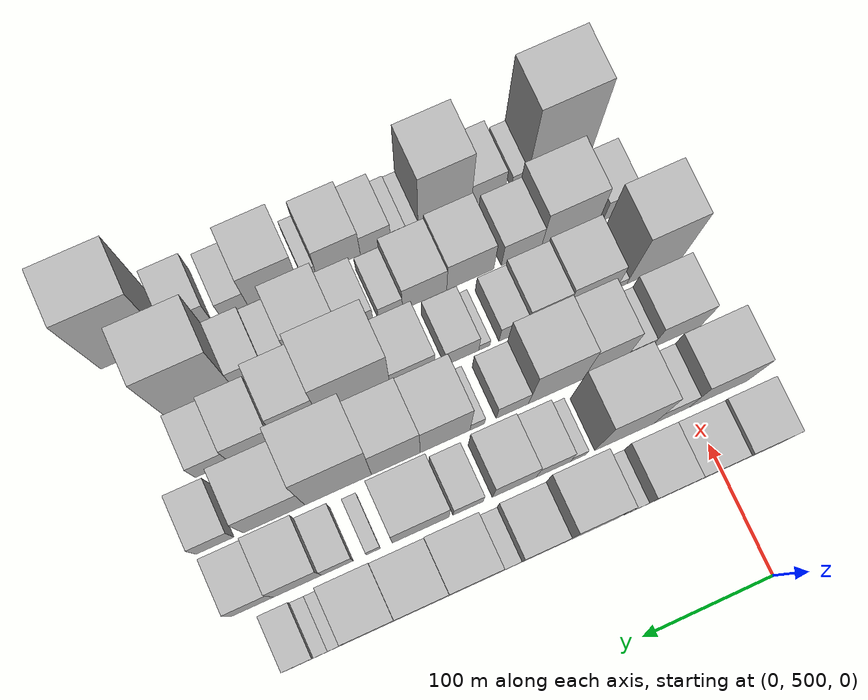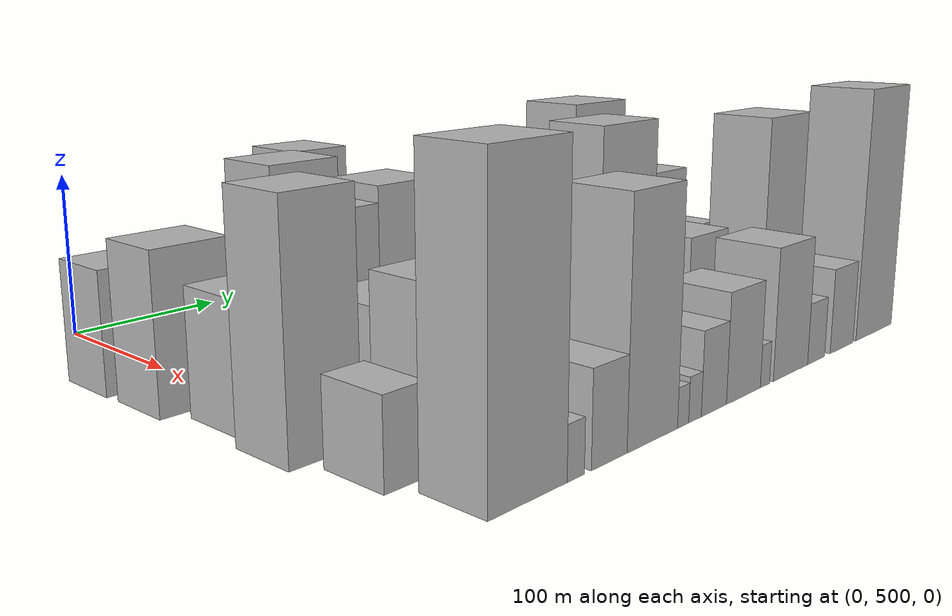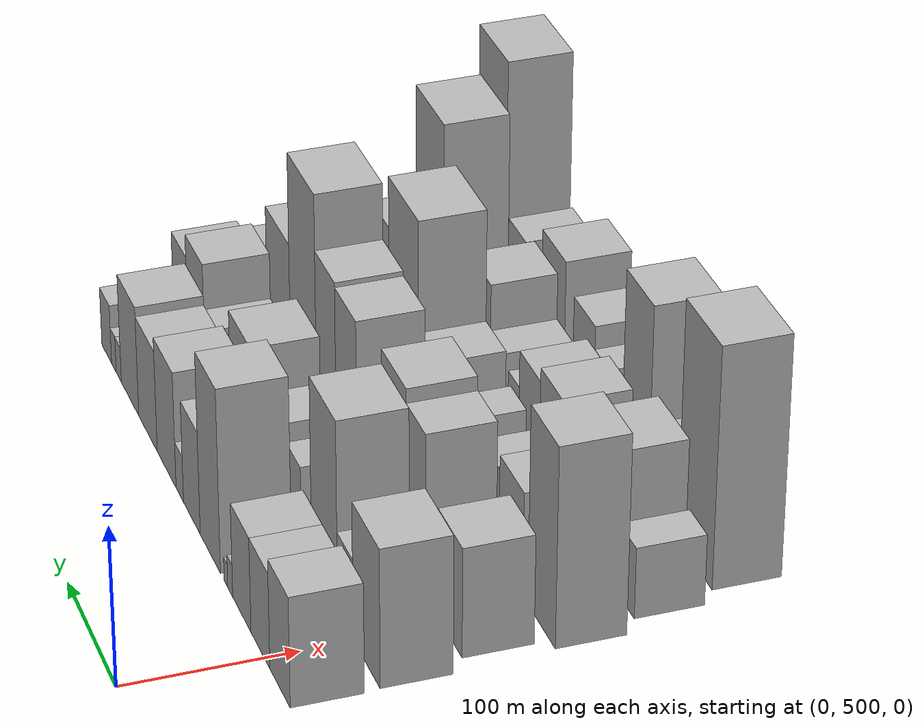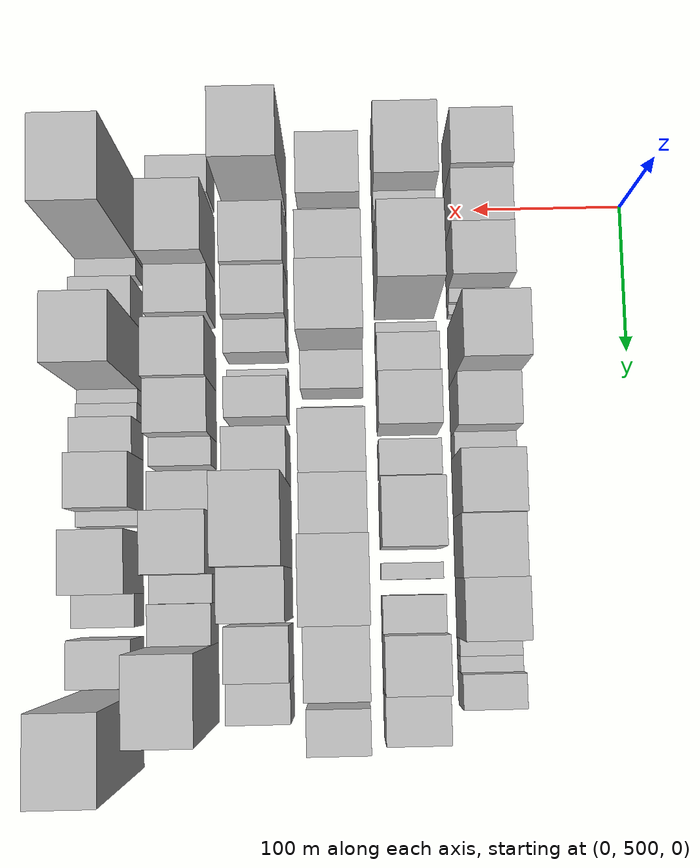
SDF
<sdf version="1.6">
 <world name="default">
  <model name="building_39">
   <static>1</static>
   <pose>100.0000 472.1289 0 0.000000 0.000000 0.000000</pose>
   <link name="link">
    <pose>0 0 34.50 0 0 0</pose>
    <collision name="collision"><geometry><box><size>40.0000 36.1542 69.0000</size></box></geometry></collision>
    <visual name="visual">
     <cast_shadows>0</cast_shadows>
     <geometry><box><size>40.0000 36.1542 69.0000</size></box></geometry>
     <material>
      <script>
       <uri>model://HANNAS_wall/materials/scripts</uri>
       <uri>model://HANNAS_wall/materials/textures</uri>
       <name>vrc/HANNAS_wall</name>
      </script>
     </material>
    </visual>
   </link>
  </model>
  <model name="building_40">
   <static>1</static>
   <pose>100.0000 507.4661 0 0.000000 0.000000 0.000000</pose>
   <link name="link">
    <pose>0 0 30.00 0 0 0</pose>
    <collision name="collision"><geometry><box><size>40.0000 34.5202 60.0000</size></box></geometry></collision>
    <visual name="visual">
     <cast_shadows>0</cast_shadows>
     <geometry><box><size>40.0000 34.5202 60.0000</size></box></geometry>
     <material>
      <script>
       <uri>model://HANNAS_wall/materials/scripts</uri>
       <uri>model://HANNAS_wall/materials/textures</uri>
       <name>vrc/HANNAS_wall</name>
      </script>
     </material>
    </visual>
   </link>
  </model>
  <model name="building_41">
   <static>1</static>
   <pose>100.0000 541.8242 0 0.000000 0.000000 0.000000</pose>
   <link name="link">
    <pose>0 0 30.00 0 0 0</pose>
    <collision name="collision"><geometry><box><size>40.0000 34.1960 60.0000</size></box></geometry></collision>
    <visual name="visual">
     <cast_shadows>0</cast_shadows>
     <geometry><box><size>40.0000 34.1960 60.0000</size></box></geometry>
     <material>
      <script>
       <uri>model://HANNAS_wall/materials/scripts</uri>
       <uri>model://HANNAS_wall/materials/textures</uri>
       <name>vrc/HANNAS_wall</name>
      </script>
     </material>
    </visual>
   </link>
  </model>
  <model name="building_42">
   <static>1</static>
   <pose>100.0000 563.6817 0 0.000000 0.000000 0.000000</pose>
   <link name="link">
    <pose>0 0 10.50 0 0 0</pose>
    <collision name="collision"><geometry><box><size>40.0000 9.5190 21.0000</size></box></geometry></collision>
    <visual name="visual">
     <cast_shadows>0</cast_shadows>
     <geometry><box><size>40.0000 9.5190 21.0000</size></box></geometry>
     <material>
      <script>
       <uri>model://HANNAS_wall/materials/scripts</uri>
       <uri>model://HANNAS_wall/materials/textures</uri>
       <name>vrc/HANNAS_wall</name>
      </script>
     </material>
    </visual>
   </link>
  </model>
  <model name="building_43">
   <static>1</static>
   <pose>100.0000 571.8710 0 0.000000 0.000000 0.000000</pose>
   <link name="link">
    <pose>0 0 7.50 0 0 0</pose>
    <collision name="collision"><geometry><box><size>40.0000 6.8597 15.0000</size></box></geometry></collision>
    <visual name="visual">
     <cast_shadows>0</cast_shadows>
     <geometry><box><size>40.0000 6.8597 15.0000</size></box></geometry>
     <material>
      <script>
       <uri>model://HANNAS_wall/materials/scripts</uri>
       <uri>model://HANNAS_wall/materials/textures</uri>
       <name>vrc/HANNAS_wall</name>
      </script>
     </material>
    </visual>
   </link>
  </model>
  <model name="building_44">
   <static>1</static>
   <pose>100.0000 602.0692 0 0.000000 0.000000 0.000000</pose>
   <link name="link">
    <pose>0 0 58.50 0 0 0</pose>
    <collision name="collision"><geometry><box><size>40.0000 39.5367 117.0000</size></box></geometry></collision>
    <visual name="visual">
     <cast_shadows>0</cast_shadows>
     <geometry><box><size>40.0000 39.5367 117.0000</size></box></geometry>
     <material>
      <script>
       <uri>model://HANNAS_wall/materials/scripts</uri>
       <uri>model://HANNAS_wall/materials/textures</uri>
       <name>vrc/HANNAS_wall</name>
      </script>
     </material>
    </visual>
   </link>
  </model>
  <model name="building_45">
   <static>1</static>
   <pose>100.0000 638.5882 0 0.000000 0.000000 0.000000</pose>
   <link name="link">
    <pose>0 0 33.00 0 0 0</pose>
    <collision name="collision"><geometry><box><size>40.0000 33.5014 66.0000</size></box></geometry></collision>
    <visual name="visual">
     <cast_shadows>0</cast_shadows>
     <geometry><box><size>40.0000 33.5014 66.0000</size></box></geometry>
     <material>
      <script>
       <uri>model://HANNAS_wall/materials/scripts</uri>
       <uri>model://HANNAS_wall/materials/textures</uri>
       <name>vrc/HANNAS_wall</name>
      </script>
     </material>
    </visual>
   </link>
  </model>
  <model name="building_46">
   <static>1</static>
   <pose>100.0000 662.9354 0 0.000000 0.000000 0.000000</pose>
   <link name="link">
    <pose>0 0 15.00 0 0 0</pose>
    <collision name="collision"><geometry><box><size>40.0000 15.1930 30.0000</size></box></geometry></collision>
    <visual name="visual">
     <cast_shadows>0</cast_shadows>
     <geometry><box><size>40.0000 15.1930 30.0000</size></box></geometry>
     <material>
      <script>
       <uri>model://HANNAS_wall/materials/scripts</uri>
       <uri>model://HANNAS_wall/materials/textures</uri>
       <name>vrc/HANNAS_wall</name>
      </script>
     </material>
    </visual>
   </link>
  </model>
  <model name="building_47">
   <static>1</static>
   <pose>100.0000 690.0562 0 0.000000 0.000000 0.000000</pose>
   <link name="link">
    <pose>0 0 37.50 0 0 0</pose>
    <collision name="collision"><geometry><box><size>40.0000 39.0487 75.0000</size></box></geometry></collision>
    <visual name="visual">
     <cast_shadows>0</cast_shadows>
     <geometry><box><size>40.0000 39.0487 75.0000</size></box></geometry>
     <material>
      <script>
       <uri>model://HANNAS_wall/materials/scripts</uri>
       <uri>model://HANNAS_wall/materials/textures</uri>
       <name>vrc/HANNAS_wall</name>
      </script>
     </material>
    </visual>
   </link>
  </model>
  <model name="building_48">
   <static>1</static>
   <pose>100.0000 729.2057 0 0.000000 0.000000 0.000000</pose>
   <link name="link">
    <pose>0 0 33.00 0 0 0</pose>
    <collision name="collision"><geometry><box><size>40.0000 39.2503 66.0000</size></box></geometry></collision>
    <visual name="visual">
     <cast_shadows>0</cast_shadows>
     <geometry><box><size>40.0000 39.2503 66.0000</size></box></geometry>
     <material>
      <script>
       <uri>model://HANNAS_wall/materials/scripts</uri>
       <uri>model://HANNAS_wall/materials/textures</uri>
       <name>vrc/HANNAS_wall</name>
      </script>
     </material>
    </visual>
   </link>
  </model>
  <model name="building_49">
   <static>1</static>
   <pose>100.0000 767.9527 0 0.000000 0.000000 0.000000</pose>
   <link name="link">
    <pose>0 0 36.00 0 0 0</pose>
    <collision name="collision"><geometry><box><size>40.0000 38.2437 72.0000</size></box></geometry></collision>
    <visual name="visual">
     <cast_shadows>0</cast_shadows>
     <geometry><box><size>40.0000 38.2437 72.0000</size></box></geometry>
     <material>
      <script>
       <uri>model://HANNAS_wall/materials/scripts</uri>
       <uri>model://HANNAS_wall/materials/textures</uri>
       <name>vrc/HANNAS_wall</name>
      </script>
     </material>
    </visual>
   </link>
  </model>
  <model name="building_50">
   <static>1</static>
   <pose>100.0000 792.7380 0 0.000000 0.000000 0.000000</pose>
   <link name="link">
    <pose>0 0 12.00 0 0 0</pose>
    <collision name="collision"><geometry><box><size>40.0000 11.3270 24.0000</size></box></geometry></collision>
    <visual name="visual">
     <cast_shadows>0</cast_shadows>
     <geometry><box><size>40.0000 11.3270 24.0000</size></box></geometry>
     <material>
      <script>
       <uri>model://HANNAS_wall/materials/scripts</uri>
       <uri>model://HANNAS_wall/materials/textures</uri>
       <name>vrc/HANNAS_wall</name>
      </script>
     </material>
    </visual>
   </link>
  </model>
  <model name="building_51">
   <static>1</static>
   <pose>100.0000 803.5421 0 0.000000 0.000000 0.000000</pose>
   <link name="link">
    <pose>0 0 12.00 0 0 0</pose>
    <collision name="collision"><geometry><box><size>40.0000 10.2812 24.0000</size></box></geometry></collision>
    <visual name="visual">
     <cast_shadows>0</cast_shadows>
     <geometry><box><size>40.0000 10.2812 24.0000</size></box></geometry>
     <material>
      <script>
       <uri>model://HANNAS_wall/materials/scripts</uri>
       <uri>model://HANNAS_wall/materials/textures</uri>
       <name>vrc/HANNAS_wall</name>
      </script>
     </material>
    </visual>
   </link>
  </model>
  <model name="building_52">
   <static>1</static>
   <pose>100.0000 819.6766 0 0.000000 0.000000 0.000000</pose>
   <link name="link">
    <pose>0 0 19.50 0 0 0</pose>
    <collision name="collision"><geometry><box><size>40.0000 21.9879 39.0000</size></box></geometry></collision>
    <visual name="visual">
     <cast_shadows>0</cast_shadows>
     <geometry><box><size>40.0000 21.9879 39.0000</size></box></geometry>
     <material>
      <script>
       <uri>model://HANNAS_wall/materials/scripts</uri>
       <uri>model://HANNAS_wall/materials/textures</uri>
       <name>vrc/HANNAS_wall</name>
      </script>
     </material>
    </visual>
   </link>
  </model>
  <model name="building_85">
   <static>1</static>
   <pose>149.0000 478.4495 0 0.000000 0.000000 0.000000</pose>
   <link name="link">
    <pose>0 0 43.50 0 0 0</pose>
    <collision name="collision"><geometry><box><size>40.0000 45.8754 87.0000</size></box></geometry></collision>
    <visual name="visual">
     <cast_shadows>0</cast_shadows>
     <geometry><box><size>40.0000 45.8754 87.0000</size></box></geometry>
     <material>
      <script>
       <uri>model://HANNAS_wall/materials/scripts</uri>
       <uri>model://HANNAS_wall/materials/textures</uri>
       <name>vrc/HANNAS_wall</name>
      </script>
     </material>
    </visual>
   </link>
  </model>
  <model name="building_86">
   <static>1</static>
   <pose>149.0000 514.8269 0 0.000000 0.000000 0.000000</pose>
   <link name="link">
    <pose>0 0 25.50 0 0 0</pose>
    <collision name="collision"><geometry><box><size>40.0000 26.8794 51.0000</size></box></geometry></collision>
    <visual name="visual">
     <cast_shadows>0</cast_shadows>
     <geometry><box><size>40.0000 26.8794 51.0000</size></box></geometry>
     <material>
      <script>
       <uri>model://HANNAS_wall/materials/scripts</uri>
       <uri>model://HANNAS_wall/materials/textures</uri>
       <name>vrc/HANNAS_wall</name>
      </script>
     </material>
    </visual>
   </link>
  </model>
  <model name="building_87">
   <static>1</static>
   <pose>149.0000 551.3746 0 0.000000 0.000000 0.000000</pose>
   <link name="link">
    <pose>0 0 60.00 0 0 0</pose>
    <collision name="collision"><geometry><box><size>40.0000 46.2159 120.0000</size></box></geometry></collision>
    <visual name="visual">
     <cast_shadows>0</cast_shadows>
     <geometry><box><size>40.0000 46.2159 120.0000</size></box></geometry>
     <material>
      <script>
       <uri>model://HANNAS_wall/materials/scripts</uri>
       <uri>model://HANNAS_wall/materials/textures</uri>
       <name>vrc/HANNAS_wall</name>
      </script>
     </material>
    </visual>
   </link>
  </model>
  <model name="building_88">
   <static>1</static>
   <pose>149.0000 587.4664 0 0.000000 0.000000 0.000000</pose>
   <link name="link">
    <pose>0 0 12.00 0 0 0</pose>
    <collision name="collision"><geometry><box><size>40.0000 11.9678 24.0000</size></box></geometry></collision>
    <visual name="visual">
     <cast_shadows>0</cast_shadows>
     <geometry><box><size>40.0000 11.9678 24.0000</size></box></geometry>
     <material>
      <script>
       <uri>model://HANNAS_wall/materials/scripts</uri>
       <uri>model://HANNAS_wall/materials/textures</uri>
       <name>vrc/HANNAS_wall</name>
      </script>
     </material>
    </visual>
   </link>
  </model>
  <model name="building_89">
   <static>1</static>
   <pose>149.0000 606.6335 0 0.000000 0.000000 0.000000</pose>
   <link name="link">
    <pose>0 0 25.50 0 0 0</pose>
    <collision name="collision"><geometry><box><size>40.0000 26.3666 51.0000</size></box></geometry></collision>
    <visual name="visual">
     <cast_shadows>0</cast_shadows>
     <geometry><box><size>40.0000 26.3666 51.0000</size></box></geometry>
     <material>
      <script>
       <uri>model://HANNAS_wall/materials/scripts</uri>
       <uri>model://HANNAS_wall/materials/textures</uri>
       <name>vrc/HANNAS_wall</name>
      </script>
     </material>
    </visual>
   </link>
  </model>
  <model name="building_90">
   <static>1</static>
   <pose>149.0000 636.5814 0 0.000000 0.000000 0.000000</pose>
   <link name="link">
    <pose>0 0 31.50 0 0 0</pose>
    <collision name="collision"><geometry><box><size>40.0000 33.5291 63.0000</size></box></geometry></collision>
    <visual name="visual">
     <cast_shadows>0</cast_shadows>
     <geometry><box><size>40.0000 33.5291 63.0000</size></box></geometry>
     <material>
      <script>
       <uri>model://HANNAS_wall/materials/scripts</uri>
       <uri>model://HANNAS_wall/materials/textures</uri>
       <name>vrc/HANNAS_wall</name>
      </script>
     </material>
    </visual>
   </link>
  </model>
  <model name="building_91">
   <static>1</static>
   <pose>149.0000 671.8169 0 0.000000 0.000000 0.000000</pose>
   <link name="link">
    <pose>0 0 21.00 0 0 0</pose>
    <collision name="collision"><geometry><box><size>40.0000 22.9419 42.0000</size></box></geometry></collision>
    <visual name="visual">
     <cast_shadows>0</cast_shadows>
     <geometry><box><size>40.0000 22.9419 42.0000</size></box></geometry>
     <material>
      <script>
       <uri>model://HANNAS_wall/materials/scripts</uri>
       <uri>model://HANNAS_wall/materials/textures</uri>
       <name>vrc/HANNAS_wall</name>
      </script>
     </material>
    </visual>
   </link>
  </model>
  <model name="building_92">
   <static>1</static>
   <pose>149.0000 707.8054 0 0.000000 0.000000 0.000000</pose>
   <link name="link">
    <pose>0 0 36.00 0 0 0</pose>
    <collision name="collision"><geometry><box><size>40.0000 43.0351 72.0000</size></box></geometry></collision>
    <visual name="visual">
     <cast_shadows>0</cast_shadows>
     <geometry><box><size>40.0000 43.0351 72.0000</size></box></geometry>
     <material>
      <script>
       <uri>model://HANNAS_wall/materials/scripts</uri>
       <uri>model://HANNAS_wall/materials/textures</uri>
       <name>vrc/HANNAS_wall</name>
      </script>
     </material>
    </visual>
   </link>
  </model>
  <model name="building_93">
   <static>1</static>
   <pose>149.0000 743.5890 0 0.000000 0.000000 0.000000</pose>
   <link name="link">
    <pose>0 0 12.00 0 0 0</pose>
    <collision name="collision"><geometry><box><size>40.0000 10.5320 24.0000</size></box></geometry></collision>
    <visual name="visual">
     <cast_shadows>0</cast_shadows>
     <geometry><box><size>40.0000 10.5320 24.0000</size></box></geometry>
     <material>
      <script>
       <uri>model://HANNAS_wall/materials/scripts</uri>
       <uri>model://HANNAS_wall/materials/textures</uri>
       <name>vrc/HANNAS_wall</name>
      </script>
     </material>
    </visual>
   </link>
  </model>
  <model name="building_94">
   <static>1</static>
   <pose>149.0000 770.7004 0 0.000000 0.000000 0.000000</pose>
   <link name="link">
    <pose>0 0 21.00 0 0 0</pose>
    <collision name="collision"><geometry><box><size>40.0000 23.6908 42.0000</size></box></geometry></collision>
    <visual name="visual">
     <cast_shadows>0</cast_shadows>
     <geometry><box><size>40.0000 23.6908 42.0000</size></box></geometry>
     <material>
      <script>
       <uri>model://HANNAS_wall/materials/scripts</uri>
       <uri>model://HANNAS_wall/materials/textures</uri>
       <name>vrc/HANNAS_wall</name>
      </script>
     </material>
    </visual>
   </link>
  </model>
  <model name="building_95">
   <static>1</static>
   <pose>149.0000 800.5840 0 0.000000 0.000000 0.000000</pose>
   <link name="link">
    <pose>0 0 36.00 0 0 0</pose>
    <collision name="collision"><geometry><box><size>40.0000 36.0763 72.0000</size></box></geometry></collision>
    <visual name="visual">
     <cast_shadows>0</cast_shadows>
     <geometry><box><size>40.0000 36.0763 72.0000</size></box></geometry>
     <material>
      <script>
       <uri>model://HANNAS_wall/materials/scripts</uri>
       <uri>model://HANNAS_wall/materials/textures</uri>
       <name>vrc/HANNAS_wall</name>
      </script>
     </material>
    </visual>
   </link>
  </model>
  <model name="building_96">
   <static>1</static>
   <pose>149.0000 834.2031 0 0.000000 0.000000 0.000000</pose>
   <link name="link">
    <pose>0 0 28.50 0 0 0</pose>
    <collision name="collision"><geometry><box><size>40.0000 31.1619 57.0000</size></box></geometry></collision>
    <visual name="visual">
     <cast_shadows>0</cast_shadows>
     <geometry><box><size>40.0000 31.1619 57.0000</size></box></geometry>
     <material>
      <script>
       <uri>model://HANNAS_wall/materials/scripts</uri>
       <uri>model://HANNAS_wall/materials/textures</uri>
       <name>vrc/HANNAS_wall</name>
      </script>
     </material>
    </visual>
   </link>
  </model>
  <model name="building_135">
   <static>1</static>
   <pose>198.0000 487.4423 0 0.000000 0.000000 0.000000</pose>
   <link name="link">
    <pose>0 0 34.50 0 0 0</pose>
    <collision name="collision"><geometry><box><size>40.0000 39.5926 69.0000</size></box></geometry></collision>
    <visual name="visual">
     <cast_shadows>0</cast_shadows>
     <geometry><box><size>40.0000 39.5926 69.0000</size></box></geometry>
     <material>
      <script>
       <uri>model://HANNAS_wall/materials/scripts</uri>
       <uri>model://HANNAS_wall/materials/textures</uri>
       <name>vrc/HANNAS_wall</name>
      </script>
     </material>
    </visual>
   </link>
  </model>
  <model name="building_136">
   <static>1</static>
   <pose>198.0000 517.6573 0 0.000000 0.000000 0.000000</pose>
   <link name="link">
    <pose>0 0 18.00 0 0 0</pose>
    <collision name="collision"><geometry><box><size>40.0000 20.8374 36.0000</size></box></geometry></collision>
    <visual name="visual">
     <cast_shadows>0</cast_shadows>
     <geometry><box><size>40.0000 20.8374 36.0000</size></box></geometry>
     <material>
      <script>
       <uri>model://HANNAS_wall/materials/scripts</uri>
       <uri>model://HANNAS_wall/materials/textures</uri>
       <name>vrc/HANNAS_wall</name>
      </script>
     </material>
    </visual>
   </link>
  </model>
  <model name="building_137">
   <static>1</static>
   <pose>198.0000 544.0962 0 0.000000 0.000000 0.000000</pose>
   <link name="link">
    <pose>0 0 51.00 0 0 0</pose>
    <collision name="collision"><geometry><box><size>40.0000 32.0405 102.0000</size></box></geometry></collision>
    <visual name="visual">
     <cast_shadows>0</cast_shadows>
     <geometry><box><size>40.0000 32.0405 102.0000</size></box></geometry>
     <material>
      <script>
       <uri>model://HANNAS_wall/materials/scripts</uri>
       <uri>model://HANNAS_wall/materials/textures</uri>
       <name>vrc/HANNAS_wall</name>
      </script>
     </material>
    </visual>
   </link>
  </model>
  <model name="building_138">
   <static>1</static>
   <pose>198.0000 581.4063 0 0.000000 0.000000 0.000000</pose>
   <link name="link">
    <pose>0 0 55.50 0 0 0</pose>
    <collision name="collision"><geometry><box><size>40.0000 42.5797 111.0000</size></box></geometry></collision>
    <visual name="visual">
     <cast_shadows>0</cast_shadows>
     <geometry><box><size>40.0000 42.5797 111.0000</size></box></geometry>
     <material>
      <script>
       <uri>model://HANNAS_wall/materials/scripts</uri>
       <uri>model://HANNAS_wall/materials/textures</uri>
       <name>vrc/HANNAS_wall</name>
      </script>
     </material>
    </visual>
   </link>
  </model>
  <model name="building_139">
   <static>1</static>
   <pose>198.0000 615.1747 0 0.000000 0.000000 0.000000</pose>
   <link name="link">
    <pose>0 0 22.50 0 0 0</pose>
    <collision name="collision"><geometry><box><size>40.0000 24.9571 45.0000</size></box></geometry></collision>
    <visual name="visual">
     <cast_shadows>0</cast_shadows>
     <geometry><box><size>40.0000 24.9571 45.0000</size></box></geometry>
     <material>
      <script>
       <uri>model://HANNAS_wall/materials/scripts</uri>
       <uri>model://HANNAS_wall/materials/textures</uri>
       <name>vrc/HANNAS_wall</name>
      </script>
     </material>
    </visual>
   </link>
  </model>
  <model name="building_140">
   <static>1</static>
   <pose>198.0000 642.2478 0 0.000000 0.000000 0.000000</pose>
   <link name="link">
    <pose>0 0 13.50 0 0 0</pose>
    <collision name="collision"><geometry><box><size>40.0000 11.1889 27.0000</size></box></geometry></collision>
    <visual name="visual">
     <cast_shadows>0</cast_shadows>
     <geometry><box><size>40.0000 11.1889 27.0000</size></box></geometry>
     <material>
      <script>
       <uri>model://HANNAS_wall/materials/scripts</uri>
       <uri>model://HANNAS_wall/materials/textures</uri>
       <name>vrc/HANNAS_wall</name>
      </script>
     </material>
    </visual>
   </link>
  </model>
  <model name="building_141">
   <static>1</static>
   <pose>198.0000 666.9610 0 0.000000 0.000000 0.000000</pose>
   <link name="link">
    <pose>0 0 51.00 0 0 0</pose>
    <collision name="collision"><geometry><box><size>40.0000 38.2375 102.0000</size></box></geometry></collision>
    <visual name="visual">
     <cast_shadows>0</cast_shadows>
     <geometry><box><size>40.0000 38.2375 102.0000</size></box></geometry>
     <material>
      <script>
       <uri>model://HANNAS_wall/materials/scripts</uri>
       <uri>model://HANNAS_wall/materials/textures</uri>
       <name>vrc/HANNAS_wall</name>
      </script>
     </material>
    </visual>
   </link>
  </model>
  <model name="building_142">
   <static>1</static>
   <pose>198.0000 704.6001 0 0.000000 0.000000 0.000000</pose>
   <link name="link">
    <pose>0 0 52.50 0 0 0</pose>
    <collision name="collision"><geometry><box><size>40.0000 37.0406 105.0000</size></box></geometry></collision>
    <visual name="visual">
     <cast_shadows>0</cast_shadows>
     <geometry><box><size>40.0000 37.0406 105.0000</size></box></geometry>
     <material>
      <script>
       <uri>model://HANNAS_wall/materials/scripts</uri>
       <uri>model://HANNAS_wall/materials/textures</uri>
       <name>vrc/HANNAS_wall</name>
      </script>
     </material>
    </visual>
   </link>
  </model>
  <model name="building_143">
   <static>1</static>
   <pose>198.0000 748.4615 0 0.000000 0.000000 0.000000</pose>
   <link name="link">
    <pose>0 0 70.50 0 0 0</pose>
    <collision name="collision"><geometry><box><size>40.0000 50.6822 141.0000</size></box></geometry></collision>
    <visual name="visual">
     <cast_shadows>0</cast_shadows>
     <geometry><box><size>40.0000 50.6822 141.0000</size></box></geometry>
     <material>
      <script>
       <uri>model://HANNAS_wall/materials/scripts</uri>
       <uri>model://HANNAS_wall/materials/textures</uri>
       <name>vrc/HANNAS_wall</name>
      </script>
     </material>
    </visual>
   </link>
  </model>
  <model name="building_144">
   <static>1</static>
   <pose>198.0000 797.0505 0 0.000000 0.000000 0.000000</pose>
   <link name="link">
    <pose>0 0 40.50 0 0 0</pose>
    <collision name="collision"><geometry><box><size>40.0000 46.4958 81.0000</size></box></geometry></collision>
    <visual name="visual">
     <cast_shadows>0</cast_shadows>
     <geometry><box><size>40.0000 46.4958 81.0000</size></box></geometry>
     <material>
      <script>
       <uri>model://HANNAS_wall/materials/scripts</uri>
       <uri>model://HANNAS_wall/materials/textures</uri>
       <name>vrc/HANNAS_wall</name>
      </script>
     </material>
    </visual>
   </link>
  </model>
  <model name="building_145">
   <static>1</static>
   <pose>198.0000 841.5733 0 0.000000 0.000000 0.000000</pose>
   <link name="link">
    <pose>0 0 24.00 0 0 0</pose>
    <collision name="collision"><geometry><box><size>40.0000 28.5496 48.0000</size></box></geometry></collision>
    <visual name="visual">
     <cast_shadows>0</cast_shadows>
     <geometry><box><size>40.0000 28.5496 48.0000</size></box></geometry>
     <material>
      <script>
       <uri>model://HANNAS_wall/materials/scripts</uri>
       <uri>model://HANNAS_wall/materials/textures</uri>
       <name>vrc/HANNAS_wall</name>
      </script>
     </material>
    </visual>
   </link>
  </model>
  <model name="building_182">
   <static>1</static>
   <pose>247.0000 481.2819 0 0.000000 0.000000 0.000000</pose>
   <link name="link">
    <pose>0 0 63.00 0 0 0</pose>
    <collision name="collision"><geometry><box><size>40.0000 42.6431 126.0000</size></box></geometry></collision>
    <visual name="visual">
     <cast_shadows>0</cast_shadows>
     <geometry><box><size>40.0000 42.6431 126.0000</size></box></geometry>
     <material>
      <script>
       <uri>model://HANNAS_wall/materials/scripts</uri>
       <uri>model://HANNAS_wall/materials/textures</uri>
       <name>vrc/HANNAS_wall</name>
      </script>
     </material>
    </visual>
   </link>
  </model>
  <model name="building_183">
   <static>1</static>
   <pose>247.0000 506.5623 0 0.000000 0.000000 0.000000</pose>
   <link name="link">
    <pose>0 0 9.00 0 0 0</pose>
    <collision name="collision"><geometry><box><size>40.0000 7.9178 18.0000</size></box></geometry></collision>
    <visual name="visual">
     <cast_shadows>0</cast_shadows>
     <geometry><box><size>40.0000 7.9178 18.0000</size></box></geometry>
     <material>
      <script>
       <uri>model://HANNAS_wall/materials/scripts</uri>
       <uri>model://HANNAS_wall/materials/textures</uri>
       <name>vrc/HANNAS_wall</name>
      </script>
     </material>
    </visual>
   </link>
  </model>
  <model name="building_184">
   <static>1</static>
   <pose>247.0000 529.8665 0 0.000000 0.000000 0.000000</pose>
   <link name="link">
    <pose>0 0 33.00 0 0 0</pose>
    <collision name="collision"><geometry><box><size>40.0000 38.6906 66.0000</size></box></geometry></collision>
    <visual name="visual">
     <cast_shadows>0</cast_shadows>
     <geometry><box><size>40.0000 38.6906 66.0000</size></box></geometry>
     <material>
      <script>
       <uri>model://HANNAS_wall/materials/scripts</uri>
       <uri>model://HANNAS_wall/materials/textures</uri>
       <name>vrc/HANNAS_wall</name>
      </script>
     </material>
    </visual>
   </link>
  </model>
  <model name="building_185">
   <static>1</static>
   <pose>247.0000 565.0422 0 0.000000 0.000000 0.000000</pose>
   <link name="link">
    <pose>0 0 28.50 0 0 0</pose>
    <collision name="collision"><geometry><box><size>40.0000 31.6606 57.0000</size></box></geometry></collision>
    <visual name="visual">
     <cast_shadows>0</cast_shadows>
     <geometry><box><size>40.0000 31.6606 57.0000</size></box></geometry>
     <material>
      <script>
       <uri>model://HANNAS_wall/materials/scripts</uri>
       <uri>model://HANNAS_wall/materials/textures</uri>
       <name>vrc/HANNAS_wall</name>
      </script>
     </material>
    </visual>
   </link>
  </model>
  <model name="building_186">
   <static>1</static>
   <pose>247.0000 591.7828 0 0.000000 0.000000 0.000000</pose>
   <link name="link">
    <pose>0 0 21.00 0 0 0</pose>
    <collision name="collision"><geometry><box><size>40.0000 21.8206 42.0000</size></box></geometry></collision>
    <visual name="visual">
     <cast_shadows>0</cast_shadows>
     <geometry><box><size>40.0000 21.8206 42.0000</size></box></geometry>
     <material>
      <script>
       <uri>model://HANNAS_wall/materials/scripts</uri>
       <uri>model://HANNAS_wall/materials/textures</uri>
       <name>vrc/HANNAS_wall</name>
      </script>
     </material>
    </visual>
   </link>
  </model>
  <model name="building_187">
   <static>1</static>
   <pose>247.0000 614.0792 0 0.000000 0.000000 0.000000</pose>
   <link name="link">
    <pose>0 0 9.00 0 0 0</pose>
    <collision name="collision"><geometry><box><size>40.0000 8.7723 18.0000</size></box></geometry></collision>
    <visual name="visual">
     <cast_shadows>0</cast_shadows>
     <geometry><box><size>40.0000 8.7723 18.0000</size></box></geometry>
     <material>
      <script>
       <uri>model://HANNAS_wall/materials/scripts</uri>
       <uri>model://HANNAS_wall/materials/textures</uri>
       <name>vrc/HANNAS_wall</name>
      </script>
     </material>
    </visual>
   </link>
  </model>
  <model name="building_188">
   <static>1</static>
   <pose>247.0000 631.5724 0 0.000000 0.000000 0.000000</pose>
   <link name="link">
    <pose>0 0 22.50 0 0 0</pose>
    <collision name="collision"><geometry><box><size>40.0000 26.2143 45.0000</size></box></geometry></collision>
    <visual name="visual">
     <cast_shadows>0</cast_shadows>
     <geometry><box><size>40.0000 26.2143 45.0000</size></box></geometry>
     <material>
      <script>
       <uri>model://HANNAS_wall/materials/scripts</uri>
       <uri>model://HANNAS_wall/materials/textures</uri>
       <name>vrc/HANNAS_wall</name>
      </script>
     </material>
    </visual>
   </link>
  </model>
  <model name="building_189">
   <static>1</static>
   <pose>247.0000 669.6287 0 0.000000 0.000000 0.000000</pose>
   <link name="link">
    <pose>0 0 31.50 0 0 0</pose>
    <collision name="collision"><geometry><box><size>40.0000 33.8983 63.0000</size></box></geometry></collision>
    <visual name="visual">
     <cast_shadows>0</cast_shadows>
     <geometry><box><size>40.0000 33.8983 63.0000</size></box></geometry>
     <material>
      <script>
       <uri>model://HANNAS_wall/materials/scripts</uri>
       <uri>model://HANNAS_wall/materials/textures</uri>
       <name>vrc/HANNAS_wall</name>
      </script>
     </material>
    </visual>
   </link>
  </model>
  <model name="building_190">
   <static>1</static>
   <pose>247.0000 713.2732 0 0.000000 0.000000 0.000000</pose>
   <link name="link">
    <pose>0 0 67.50 0 0 0</pose>
    <collision name="collision"><geometry><box><size>40.0000 53.3905 135.0000</size></box></geometry></collision>
    <visual name="visual">
     <cast_shadows>0</cast_shadows>
     <geometry><box><size>40.0000 53.3905 135.0000</size></box></geometry>
     <material>
      <script>
       <uri>model://HANNAS_wall/materials/scripts</uri>
       <uri>model://HANNAS_wall/materials/textures</uri>
       <name>vrc/HANNAS_wall</name>
      </script>
     </material>
    </visual>
   </link>
  </model>
  <model name="building_191">
   <static>1</static>
   <pose>247.0000 756.1698 0 0.000000 0.000000 0.000000</pose>
   <link name="link">
    <pose>0 0 51.00 0 0 0</pose>
    <collision name="collision"><geometry><box><size>40.0000 32.4028 102.0000</size></box></geometry></collision>
    <visual name="visual">
     <cast_shadows>0</cast_shadows>
     <geometry><box><size>40.0000 32.4028 102.0000</size></box></geometry>
     <material>
      <script>
       <uri>model://HANNAS_wall/materials/scripts</uri>
       <uri>model://HANNAS_wall/materials/textures</uri>
       <name>vrc/HANNAS_wall</name>
      </script>
     </material>
    </visual>
   </link>
  </model>
  <model name="building_192">
   <static>1</static>
   <pose>247.0000 792.4862 0 0.000000 0.000000 0.000000</pose>
   <link name="link">
    <pose>0 0 31.50 0 0 0</pose>
    <collision name="collision"><geometry><box><size>40.0000 34.2301 63.0000</size></box></geometry></collision>
    <visual name="visual">
     <cast_shadows>0</cast_shadows>
     <geometry><box><size>40.0000 34.2301 63.0000</size></box></geometry>
     <material>
      <script>
       <uri>model://HANNAS_wall/materials/scripts</uri>
       <uri>model://HANNAS_wall/materials/textures</uri>
       <name>vrc/HANNAS_wall</name>
      </script>
     </material>
    </visual>
   </link>
  </model>
  <model name="building_193">
   <static>1</static>
   <pose>247.0000 822.5663 0 0.000000 0.000000 0.000000</pose>
   <link name="link">
    <pose>0 0 25.50 0 0 0</pose>
    <collision name="collision"><geometry><box><size>40.0000 25.9301 51.0000</size></box></geometry></collision>
    <visual name="visual">
     <cast_shadows>0</cast_shadows>
     <geometry><box><size>40.0000 25.9301 51.0000</size></box></geometry>
     <material>
      <script>
       <uri>model://HANNAS_wall/materials/scripts</uri>
       <uri>model://HANNAS_wall/materials/textures</uri>
       <name>vrc/HANNAS_wall</name>
      </script>
     </material>
    </visual>
   </link>
  </model>
  <model name="building_228">
   <static>1</static>
   <pose>296.0000 485.1023 0 0.000000 0.000000 0.000000</pose>
   <link name="link">
    <pose>0 0 22.50 0 0 0</pose>
    <collision name="collision"><geometry><box><size>40.0000 25.2663 45.0000</size></box></geometry></collision>
    <visual name="visual">
     <cast_shadows>0</cast_shadows>
     <geometry><box><size>40.0000 25.2663 45.0000</size></box></geometry>
     <material>
      <script>
       <uri>model://HANNAS_wall/materials/scripts</uri>
       <uri>model://HANNAS_wall/materials/textures</uri>
       <name>vrc/HANNAS_wall</name>
      </script>
     </material>
    </visual>
   </link>
  </model>
  <model name="building_229">
   <static>1</static>
   <pose>296.0000 524.3156 0 0.000000 0.000000 0.000000</pose>
   <link name="link">
    <pose>0 0 43.50 0 0 0</pose>
    <collision name="collision"><geometry><box><size>40.0000 45.1603 87.0000</size></box></geometry></collision>
    <visual name="visual">
     <cast_shadows>0</cast_shadows>
     <geometry><box><size>40.0000 45.1603 87.0000</size></box></geometry>
     <material>
      <script>
       <uri>model://HANNAS_wall/materials/scripts</uri>
       <uri>model://HANNAS_wall/materials/textures</uri>
       <name>vrc/HANNAS_wall</name>
      </script>
     </material>
    </visual>
   </link>
  </model>
  <model name="building_230">
   <static>1</static>
   <pose>296.0000 562.4951 0 0.000000 0.000000 0.000000</pose>
   <link name="link">
    <pose>0 0 27.00 0 0 0</pose>
    <collision name="collision"><geometry><box><size>40.0000 31.1986 54.0000</size></box></geometry></collision>
    <visual name="visual">
     <cast_shadows>0</cast_shadows>
     <geometry><box><size>40.0000 31.1986 54.0000</size></box></geometry>
     <material>
      <script>
       <uri>model://HANNAS_wall/materials/scripts</uri>
       <uri>model://HANNAS_wall/materials/textures</uri>
       <name>vrc/HANNAS_wall</name>
      </script>
     </material>
    </visual>
   </link>
  </model>
  <model name="building_231">
   <static>1</static>
   <pose>296.0000 602.4926 0 0.000000 0.000000 0.000000</pose>
   <link name="link">
    <pose>0 0 34.50 0 0 0</pose>
    <collision name="collision"><geometry><box><size>40.0000 36.7965 69.0000</size></box></geometry></collision>
    <visual name="visual">
     <cast_shadows>0</cast_shadows>
     <geometry><box><size>40.0000 36.7965 69.0000</size></box></geometry>
     <material>
      <script>
       <uri>model://HANNAS_wall/materials/scripts</uri>
       <uri>model://HANNAS_wall/materials/textures</uri>
       <name>vrc/HANNAS_wall</name>
      </script>
     </material>
    </visual>
   </link>
  </model>
  <model name="building_232">
   <static>1</static>
   <pose>296.0000 638.0444 0 0.000000 0.000000 0.000000</pose>
   <link name="link">
    <pose>0 0 30.00 0 0 0</pose>
    <collision name="collision"><geometry><box><size>40.0000 34.3071 60.0000</size></box></geometry></collision>
    <visual name="visual">
     <cast_shadows>0</cast_shadows>
     <geometry><box><size>40.0000 34.3071 60.0000</size></box></geometry>
     <material>
      <script>
       <uri>model://HANNAS_wall/materials/scripts</uri>
       <uri>model://HANNAS_wall/materials/textures</uri>
       <name>vrc/HANNAS_wall</name>
      </script>
     </material>
    </visual>
   </link>
  </model>
  <model name="building_233">
   <static>1</static>
   <pose>296.0000 664.4883 0 0.000000 0.000000 0.000000</pose>
   <link name="link">
    <pose>0 0 18.00 0 0 0</pose>
    <collision name="collision"><geometry><box><size>40.0000 18.5808 36.0000</size></box></geometry></collision>
    <visual name="visual">
     <cast_shadows>0</cast_shadows>
     <geometry><box><size>40.0000 18.5808 36.0000</size></box></geometry>
     <material>
      <script>
       <uri>model://HANNAS_wall/materials/scripts</uri>
       <uri>model://HANNAS_wall/materials/textures</uri>
       <name>vrc/HANNAS_wall</name>
      </script>
     </material>
    </visual>
   </link>
  </model>
  <model name="building_234">
   <static>1</static>
   <pose>296.0000 690.9138 0 0.000000 0.000000 0.000000</pose>
   <link name="link">
    <pose>0 0 22.50 0 0 0</pose>
    <collision name="collision"><geometry><box><size>40.0000 26.2701 45.0000</size></box></geometry></collision>
    <visual name="visual">
     <cast_shadows>0</cast_shadows>
     <geometry><box><size>40.0000 26.2701 45.0000</size></box></geometry>
     <material>
      <script>
       <uri>model://HANNAS_wall/materials/scripts</uri>
       <uri>model://HANNAS_wall/materials/textures</uri>
       <name>vrc/HANNAS_wall</name>
      </script>
     </material>
    </visual>
   </link>
  </model>
  <model name="building_235">
   <static>1</static>
   <pose>296.0000 723.4538 0 0.000000 0.000000 0.000000</pose>
   <link name="link">
    <pose>0 0 37.50 0 0 0</pose>
    <collision name="collision"><geometry><box><size>40.0000 38.8100 75.0000</size></box></geometry></collision>
    <visual name="visual">
     <cast_shadows>0</cast_shadows>
     <geometry><box><size>40.0000 38.8100 75.0000</size></box></geometry>
     <material>
      <script>
       <uri>model://HANNAS_wall/materials/scripts</uri>
       <uri>model://HANNAS_wall/materials/textures</uri>
       <name>vrc/HANNAS_wall</name>
      </script>
     </material>
    </visual>
   </link>
  </model>
  <model name="building_236">
   <static>1</static>
   <pose>296.0000 751.9042 0 0.000000 0.000000 0.000000</pose>
   <link name="link">
    <pose>0 0 18.00 0 0 0</pose>
    <collision name="collision"><geometry><box><size>40.0000 18.0907 36.0000</size></box></geometry></collision>
    <visual name="visual">
     <cast_shadows>0</cast_shadows>
     <geometry><box><size>40.0000 18.0907 36.0000</size></box></geometry>
     <material>
      <script>
       <uri>model://HANNAS_wall/materials/scripts</uri>
       <uri>model://HANNAS_wall/materials/textures</uri>
       <name>vrc/HANNAS_wall</name>
      </script>
     </material>
    </visual>
   </link>
  </model>
  <model name="building_237">
   <static>1</static>
   <pose>296.0000 774.0159 0 0.000000 0.000000 0.000000</pose>
   <link name="link">
    <pose>0 0 22.50 0 0 0</pose>
    <collision name="collision"><geometry><box><size>40.0000 26.1328 45.0000</size></box></geometry></collision>
    <visual name="visual">
     <cast_shadows>0</cast_shadows>
     <geometry><box><size>40.0000 26.1328 45.0000</size></box></geometry>
     <material>
      <script>
       <uri>model://HANNAS_wall/materials/scripts</uri>
       <uri>model://HANNAS_wall/materials/textures</uri>
       <name>vrc/HANNAS_wall</name>
      </script>
     </material>
    </visual>
   </link>
  </model>
  <model name="building_238">
   <static>1</static>
   <pose>296.0000 812.7517 0 0.000000 0.000000 0.000000</pose>
   <link name="link">
    <pose>0 0 67.50 0 0 0</pose>
    <collision name="collision"><geometry><box><size>40.0000 51.3388 135.0000</size></box></geometry></collision>
    <visual name="visual">
     <cast_shadows>0</cast_shadows>
     <geometry><box><size>40.0000 51.3388 135.0000</size></box></geometry>
     <material>
      <script>
       <uri>model://HANNAS_wall/materials/scripts</uri>
       <uri>model://HANNAS_wall/materials/textures</uri>
       <name>vrc/HANNAS_wall</name>
      </script>
     </material>
    </visual>
   </link>
  </model>
  <model name="building_279">
   <static>1</static>
   <pose>345.0000 509.7044 0 0.000000 0.000000 0.000000</pose>
   <link name="link">
    <pose>0 0 76.50 0 0 0</pose>
    <collision name="collision"><geometry><box><size>40.0000 50.9433 153.0000</size></box></geometry></collision>
    <visual name="visual">
     <cast_shadows>0</cast_shadows>
     <geometry><box><size>40.0000 50.9433 153.0000</size></box></geometry>
     <material>
      <script>
       <uri>model://HANNAS_wall/materials/scripts</uri>
       <uri>model://HANNAS_wall/materials/textures</uri>
       <name>vrc/HANNAS_wall</name>
      </script>
     </material>
    </visual>
   </link>
  </model>
  <model name="building_280">
   <static>1</static>
   <pose>345.0000 541.2504 0 0.000000 0.000000 0.000000</pose>
   <link name="link">
    <pose>0 0 13.50 0 0 0</pose>
    <collision name="collision"><geometry><box><size>40.0000 12.1487 27.0000</size></box></geometry></collision>
    <visual name="visual">
     <cast_shadows>0</cast_shadows>
     <geometry><box><size>40.0000 12.1487 27.0000</size></box></geometry>
     <material>
      <script>
       <uri>model://HANNAS_wall/materials/scripts</uri>
       <uri>model://HANNAS_wall/materials/textures</uri>
       <name>vrc/HANNAS_wall</name>
      </script>
     </material>
    </visual>
   </link>
  </model>
  <model name="building_281">
   <static>1</static>
   <pose>345.0000 565.8047 0 0.000000 0.000000 0.000000</pose>
   <link name="link">
    <pose>0 0 24.00 0 0 0</pose>
    <collision name="collision"><geometry><box><size>40.0000 26.9598 48.0000</size></box></geometry></collision>
    <visual name="visual">
     <cast_shadows>0</cast_shadows>
     <geometry><box><size>40.0000 26.9598 48.0000</size></box></geometry>
     <material>
      <script>
       <uri>model://HANNAS_wall/materials/scripts</uri>
       <uri>model://HANNAS_wall/materials/textures</uri>
       <name>vrc/HANNAS_wall</name>
      </script>
     </material>
    </visual>
   </link>
  </model>
  <model name="building_282">
   <static>1</static>
   <pose>345.0000 600.1701 0 0.000000 0.000000 0.000000</pose>
   <link name="link">
    <pose>0 0 61.50 0 0 0</pose>
    <collision name="collision"><geometry><box><size>40.0000 41.7711 123.0000</size></box></geometry></collision>
    <visual name="visual">
     <cast_shadows>0</cast_shadows>
     <geometry><box><size>40.0000 41.7711 123.0000</size></box></geometry>
     <material>
      <script>
       <uri>model://HANNAS_wall/materials/scripts</uri>
       <uri>model://HANNAS_wall/materials/textures</uri>
       <name>vrc/HANNAS_wall</name>
      </script>
     </material>
    </visual>
   </link>
  </model>
  <model name="building_283">
   <static>1</static>
   <pose>345.0000 625.9377 0 0.000000 0.000000 0.000000</pose>
   <link name="link">
    <pose>0 0 10.50 0 0 0</pose>
    <collision name="collision"><geometry><box><size>40.0000 9.7641 21.0000</size></box></geometry></collision>
    <visual name="visual">
     <cast_shadows>0</cast_shadows>
     <geometry><box><size>40.0000 9.7641 21.0000</size></box></geometry>
     <material>
      <script>
       <uri>model://HANNAS_wall/materials/scripts</uri>
       <uri>model://HANNAS_wall/materials/textures</uri>
       <name>vrc/HANNAS_wall</name>
      </script>
     </material>
    </visual>
   </link>
  </model>
  <model name="building_284">
   <static>1</static>
   <pose>345.0000 636.5862 0 0.000000 0.000000 0.000000</pose>
   <link name="link">
    <pose>0 0 12.00 0 0 0</pose>
    <collision name="collision"><geometry><box><size>40.0000 11.5327 24.0000</size></box></geometry></collision>
    <visual name="visual">
     <cast_shadows>0</cast_shadows>
     <geometry><box><size>40.0000 11.5327 24.0000</size></box></geometry>
     <material>
      <script>
       <uri>model://HANNAS_wall/materials/scripts</uri>
       <uri>model://HANNAS_wall/materials/textures</uri>
       <name>vrc/HANNAS_wall</name>
      </script>
     </material>
    </visual>
   </link>
  </model>
  <model name="building_285">
   <static>1</static>
   <pose>345.0000 654.2825 0 0.000000 0.000000 0.000000</pose>
   <link name="link">
    <pose>0 0 22.50 0 0 0</pose>
    <collision name="collision"><geometry><box><size>40.0000 23.8600 45.0000</size></box></geometry></collision>
    <visual name="visual">
     <cast_shadows>0</cast_shadows>
     <geometry><box><size>40.0000 23.8600 45.0000</size></box></geometry>
     <material>
      <script>
       <uri>model://HANNAS_wall/materials/scripts</uri>
       <uri>model://HANNAS_wall/materials/textures</uri>
       <name>vrc/HANNAS_wall</name>
      </script>
     </material>
    </visual>
   </link>
  </model>
  <model name="building_286">
   <static>1</static>
   <pose>345.0000 683.5039 0 0.000000 0.000000 0.000000</pose>
   <link name="link">
    <pose>0 0 30.00 0 0 0</pose>
    <collision name="collision"><geometry><box><size>40.0000 34.5826 60.0000</size></box></geometry></collision>
    <visual name="visual">
     <cast_shadows>0</cast_shadows>
     <geometry><box><size>40.0000 34.5826 60.0000</size></box></geometry>
     <material>
      <script>
       <uri>model://HANNAS_wall/materials/scripts</uri>
       <uri>model://HANNAS_wall/materials/textures</uri>
       <name>vrc/HANNAS_wall</name>
      </script>
     </material>
    </visual>
   </link>
  </model>
  <model name="building_287">
   <static>1</static>
   <pose>345.0000 705.7760 0 0.000000 0.000000 0.000000</pose>
   <link name="link">
    <pose>0 0 12.00 0 0 0</pose>
    <collision name="collision"><geometry><box><size>40.0000 9.9618 24.0000</size></box></geometry></collision>
    <visual name="visual">
     <cast_shadows>0</cast_shadows>
     <geometry><box><size>40.0000 9.9618 24.0000</size></box></geometry>
     <material>
      <script>
       <uri>model://HANNAS_wall/materials/scripts</uri>
       <uri>model://HANNAS_wall/materials/textures</uri>
       <name>vrc/HANNAS_wall</name>
      </script>
     </material>
    </visual>
   </link>
  </model>
  <model name="building_288">
   <static>1</static>
   <pose>345.0000 734.4247 0 0.000000 0.000000 0.000000</pose>
   <link name="link">
    <pose>0 0 37.50 0 0 0</pose>
    <collision name="collision"><geometry><box><size>40.0000 39.3356 75.0000</size></box></geometry></collision>
    <visual name="visual">
     <cast_shadows>0</cast_shadows>
     <geometry><box><size>40.0000 39.3356 75.0000</size></box></geometry>
     <material>
      <script>
       <uri>model://HANNAS_wall/materials/scripts</uri>
       <uri>model://HANNAS_wall/materials/textures</uri>
       <name>vrc/HANNAS_wall</name>
      </script>
     </material>
    </visual>
   </link>
  </model>
  <model name="building_289">
   <static>1</static>
   <pose>345.0000 764.4961 0 0.000000 0.000000 0.000000</pose>
   <link name="link">
    <pose>0 0 18.00 0 0 0</pose>
    <collision name="collision"><geometry><box><size>40.0000 20.8072 36.0000</size></box></geometry></collision>
    <visual name="visual">
     <cast_shadows>0</cast_shadows>
     <geometry><box><size>40.0000 20.8072 36.0000</size></box></geometry>
     <material>
      <script>
       <uri>model://HANNAS_wall/materials/scripts</uri>
       <uri>model://HANNAS_wall/materials/textures</uri>
       <name>vrc/HANNAS_wall</name>
      </script>
     </material>
    </visual>
   </link>
  </model>
  <model name="building_290">
   <static>1</static>
   <pose>345.0000 796.9050 0 0.000000 0.000000 0.000000</pose>
   <link name="link">
    <pose>0 0 25.50 0 0 0</pose>
    <collision name="collision"><geometry><box><size>40.0000 30.0107 51.0000</size></box></geometry></collision>
    <visual name="visual">
     <cast_shadows>0</cast_shadows>
     <geometry><box><size>40.0000 30.0107 51.0000</size></box></geometry>
     <material>
      <script>
       <uri>model://HANNAS_wall/materials/scripts</uri>
       <uri>model://HANNAS_wall/materials/textures</uri>
       <name>vrc/HANNAS_wall</name>
      </script>
     </material>
    </visual>
   </link>
  </model>
  <model name="building_291">
   <static>1</static>
   <pose>345.0000 841.1199 0 0.000000 0.000000 0.000000</pose>
   <link name="link">
    <pose>0 0 76.50 0 0 0</pose>
    <collision name="collision"><geometry><box><size>40.0000 50.4191 153.0000</size></box></geometry></collision>
    <visual name="visual">
     <cast_shadows>0</cast_shadows>
     <geometry><box><size>40.0000 50.4191 153.0000</size></box></geometry>
     <material>
      <script>
       <uri>model://HANNAS_wall/materials/scripts</uri>
       <uri>model://HANNAS_wall/materials/textures</uri>
       <name>vrc/HANNAS_wall</name>
      </script>
     </material>
    </visual>
   </link>
  </model>
 </world>
</sdf>
